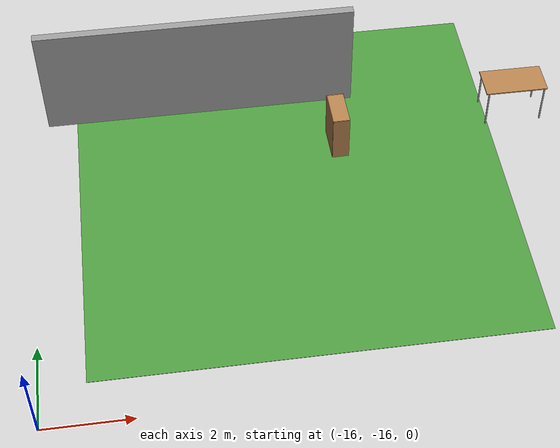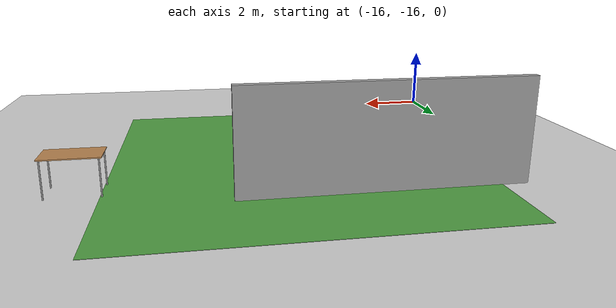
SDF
<sdf version="1.7">
 <world name="default">
  <model name="ground_plane">
   <pose>-10 -10 0 0 -0 0</pose>
   <static>1</static>
   <link name="link">
    <collision name="collision">
     <geometry><plane><normal>0 0 1</normal><size>10 10</size></plane></geometry>
     <surface><friction><ode><mu>100</mu><mu2>50</mu2></ode></friction></surface>
    </collision>
    <visual name="visual">
     <cast_shadows>0</cast_shadows>
     <geometry><plane><normal>0 0 1</normal><size>10 10</size></plane></geometry>
     <material>
      <script><uri>file://media/materials/scripts/gazebo.material</uri><name>Gazebo/Motorway</name></script>
     </material>
    </visual>
   </link>
  </model>
  <model name="ground_plane2">
   <pose>-10 -10 0 0 -0 0</pose>
   <static>1</static>
   <link name="link">
    <collision name="collision">
     <geometry><plane><normal>0 0 1</normal><size>10 10</size></plane></geometry>
     <surface><friction><ode><mu>100</mu><mu2>50</mu2></ode></friction></surface>
    </collision>
    <visual name="visual">
     <cast_shadows>0</cast_shadows>
     <geometry><plane><normal>0 0 1</normal><size>10 10</size></plane></geometry>
     <material>
      <script><uri>file://media/materials/scripts/gazebo.material</uri><name>Gazebo/Grass</name></script>
     </material>
    </visual>
   </link>
  </model>
  <model name="ground_plane3">
   <pose>-10 -10 0 0 -0 0</pose>
   <static>1</static>
   <link name="link">
    <collision name="collision">
     <geometry><plane><normal>0 0 1</normal><size>5 5</size></plane></geometry>
     <surface><friction><ode><mu>100</mu><mu2>50</mu2></ode></friction></surface>
    </collision>
    <visual name="visual">
     <cast_shadows>0</cast_shadows>
     <geometry><plane><normal>0 0 1</normal><size>5 5</size></plane></geometry>
     <material>
      <script><uri>file://media/materials/scripts/gazebo.material</uri><name>Gazebo/CoM</name></script>
     </material>
    </visual>
   </link>
  </model>
  <model name="table">
   <static>1</static>
   <link name="link">
    <collision name="surface">
     <pose>0 0 1 0 -0 0</pose>
     <geometry><box><size>1.5 0.8 0.03</size></box></geometry>
     <surface><friction><ode><mu>0.6</mu><mu2>0.6</mu2></ode></friction></surface>
    </collision>
    <visual name="visual1">
     <pose>0 0 1 0 -0 0</pose>
     <geometry><box><size>1.5 0.8 0.03</size></box></geometry>
     <material>
      <script><uri>file://media/materials/scripts/gazebo.material</uri><name>Gazebo/Wood</name></script>
     </material>
    </visual>
    <collision name="front_left_leg">
     <pose>0.68 0.38 0.5 0 -0 0</pose>
     <geometry><cylinder><radius>0.02</radius><length>1</length></cylinder></geometry>
    </collision>
    <visual name="front_left_leg">
     <pose>0.68 0.38 0.5 0 -0 0</pose>
     <geometry><cylinder><radius>0.02</radius><length>1</length></cylinder></geometry>
     <material>
      <script><uri>file://media/materials/scripts/gazebo.material</uri><name>Gazebo/Grey</name></script>
     </material>
    </visual>
    <collision name="front_right_leg">
     <pose>0.68 -0.38 0.5 0 -0 0</pose>
     <geometry><cylinder><radius>0.02</radius><length>1</length></cylinder></geometry>
    </collision>
    <visual name="front_right_leg">
     <pose>0.68 -0.38 0.5 0 -0 0</pose>
     <geometry><cylinder><radius>0.02</radius><length>1</length></cylinder></geometry>
     <material>
      <script><uri>file://media/materials/scripts/gazebo.material</uri><name>Gazebo/Grey</name></script>
     </material>
    </visual>
    <collision name="back_right_leg">
     <pose>-0.68 -0.38 0.5 0 -0 0</pose>
     <geometry><cylinder><radius>0.02</radius><length>1</length></cylinder></geometry>
    </collision>
    <visual name="back_right_leg">
     <pose>-0.68 -0.38 0.5 0 -0 0</pose>
     <geometry><cylinder><radius>0.02</radius><length>1</length></cylinder></geometry>
     <material>
      <script><uri>file://media/materials/scripts/gazebo.material</uri><name>Gazebo/Grey</name></script>
     </material>
    </visual>
    <collision name="back_left_leg">
     <pose>-0.68 0.38 0.5 0 -0 0</pose>
     <geometry><cylinder><radius>0.02</radius><length>1</length></cylinder></geometry>
    </collision>
    <visual name="back_left_leg">
     <pose>-0.68 0.38 0.5 0 -0 0</pose>
     <geometry><cylinder><radius>0.02</radius><length>1</length></cylinder></geometry>
     <material>
      <script><uri>file://media/materials/scripts/gazebo.material</uri><name>Gazebo/Grey</name></script>
     </material>
    </visual>
   </link>
   <pose>-4.36765 -8.38321 0 0 -0 0</pose>
  </model>
  <model name="bookshelf">
   <static>1</static>
   <link name="link">
    <inertial><mass>1</mass></inertial>
    <collision name="back">
     <pose>0 0.005 0.6 0 -0 0</pose>
     <geometry><box><size>0.9 0.01 1.2</size></box></geometry>
    </collision>
    <visual name="visual1">
     <pose>0 0.005 0.6 0 -0 0</pose>
     <geometry><box><size>0.9 0.01 1.2</size></box></geometry>
     <material>
      <script><uri>file://media/materials/scripts/gazebo.material</uri><name>Gazebo/Wood</name></script>
     </material>
    </visual>
    <collision name="left_side">
     <pose>0.45 -0.195 0.6 0 -0 0</pose>
     <geometry><box><size>0.02 0.4 1.2</size></box></geometry>
    </collision>
    <visual name="visual2">
     <pose>0.45 -0.195 0.6 0 -0 0</pose>
     <geometry><box><size>0.02 0.4 1.2</size></box></geometry>
     <material>
      <script><uri>file://media/materials/scripts/gazebo.material</uri><name>Gazebo/Wood</name></script>
     </material>
    </visual>
    <collision name="right_side">
     <pose>-0.45 -0.195 0.6 0 -0 0</pose>
     <geometry><box><size>0.02 0.4 1.2</size></box></geometry>
    </collision>
    <visual name="visual3">
     <pose>-0.45 -0.195 0.6 0 -0 0</pose>
     <geometry><box><size>0.02 0.4 1.2</size></box></geometry>
     <material>
      <script><uri>file://media/materials/scripts/gazebo.material</uri><name>Gazebo/Wood</name></script>
     </material>
    </visual>
    <collision name="bottom">
     <pose>0 -0.195 0.03 0 -0 0</pose>
     <geometry><box><size>0.88 0.4 0.06</size></box></geometry>
    </collision>
    <visual name="visual4">
     <pose>0 -0.195 0.03 0 -0 0</pose>
     <geometry><box><size>0.88 0.4 0.06</size></box></geometry>
     <material>
      <script><uri>file://media/materials/scripts/gazebo.material</uri><name>Gazebo/Wood</name></script>
     </material>
    </visual>
    <collision name="top">
     <pose>0 -0.195 1.19 0 -0 0</pose>
     <geometry><box><size>0.88 0.4 0.02</size></box></geometry>
    </collision>
    <visual name="visual5">
     <pose>0 -0.195 1.19 0 -0 0</pose>
     <geometry><box><size>0.88 0.4 0.02</size></box></geometry>
     <material>
      <script><uri>file://media/materials/scripts/gazebo.material</uri><name>Gazebo/Wood</name></script>
     </material>
    </visual>
    <collision name="low_shelf">
     <pose>0 -0.195 0.43 0 -0 0</pose>
     <geometry><box><size>0.88 0.4 0.02</size></box></geometry>
    </collision>
    <visual name="visual6">
     <pose>0 -0.195 0.43 0 -0 0</pose>
     <geometry><box><size>0.88 0.4 0.02</size></box></geometry>
     <material>
      <script><uri>file://media/materials/scripts/gazebo.material</uri><name>Gazebo/Wood</name></script>
     </material>
    </visual>
    <collision name="high_shelf">
     <pose>0 -0.195 0.8 0 -0 0</pose>
     <geometry><box><size>0.88 0.4 0.02</size></box></geometry>
    </collision>
    <visual name="visual7">
     <pose>0 -0.195 0.8 0 -0 0</pose>
     <geometry><box><size>0.88 0.4 0.02</size></box></geometry>
     <material>
      <script><uri>file://media/materials/scripts/gazebo.material</uri><name>Gazebo/Wood</name></script>
     </material>
    </visual>
   </link>
   <pose>-8.96283 -8.93291 -0 0 -0 1.59431</pose>
  </model>
  <model name="grey_wall">
   <static>1</static>
   <link name="link">
    <pose>0 0 1.4 0 -0 0</pose>
    <collision name="collision"><geometry><box><size>7.5 0.2 2.8</size></box></geometry></collision>
    <visual name="visual">
     <cast_shadows>0</cast_shadows>
     <geometry><box><size>7.5 0.2 2.8</size></box></geometry>
     <material>
      <script>
       <uri>model://grey_wall/materials/scripts</uri>
       <uri>model://grey_wall/materials/textures</uri>
       <name>vrc/grey_wall</name>
      </script>
     </material>
    </visual>
   </link>
   <pose>-11.9413 -7.32204 0 0 -0 0</pose>
  </model>
 </world>
</sdf>
